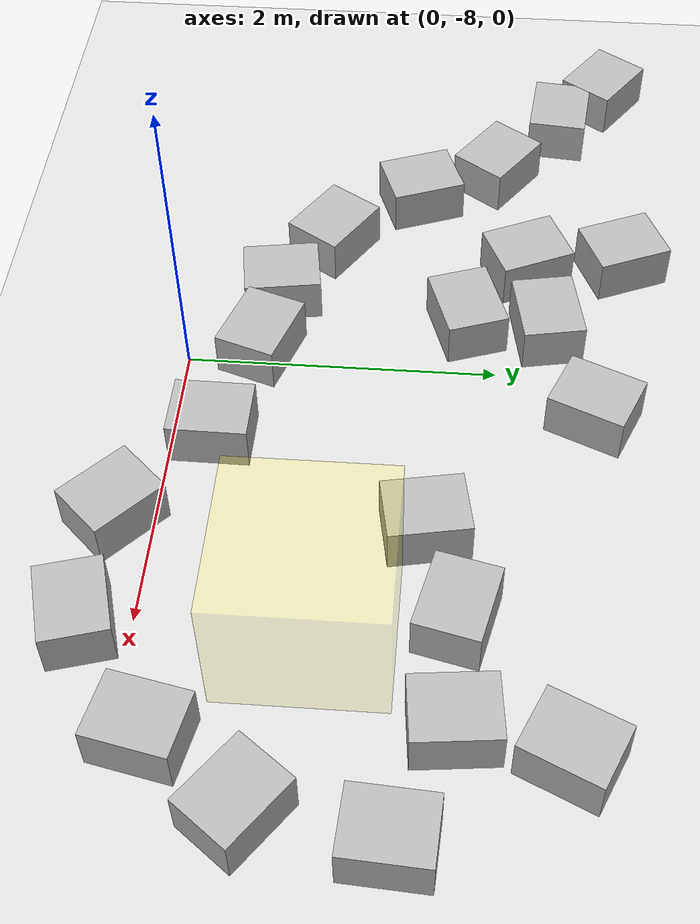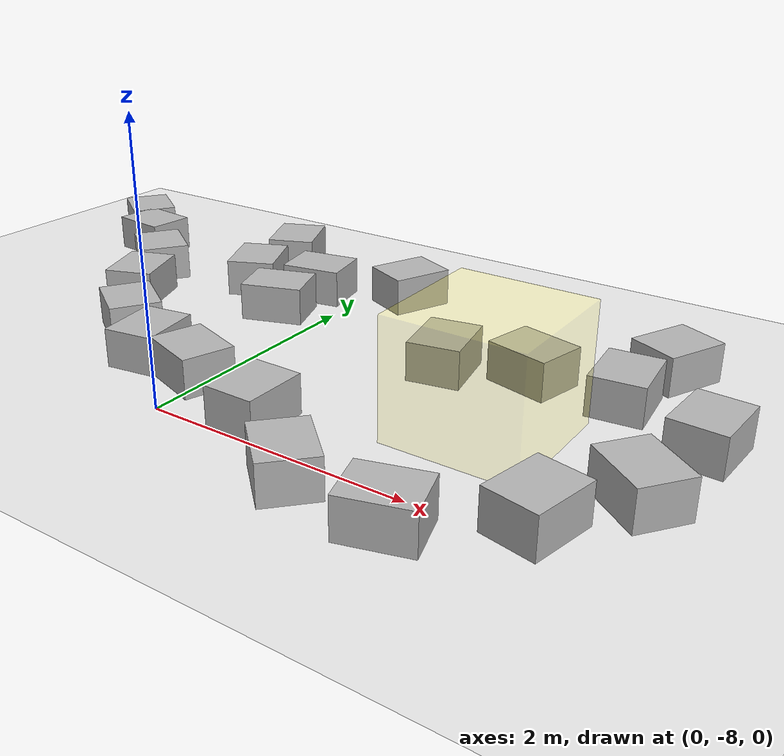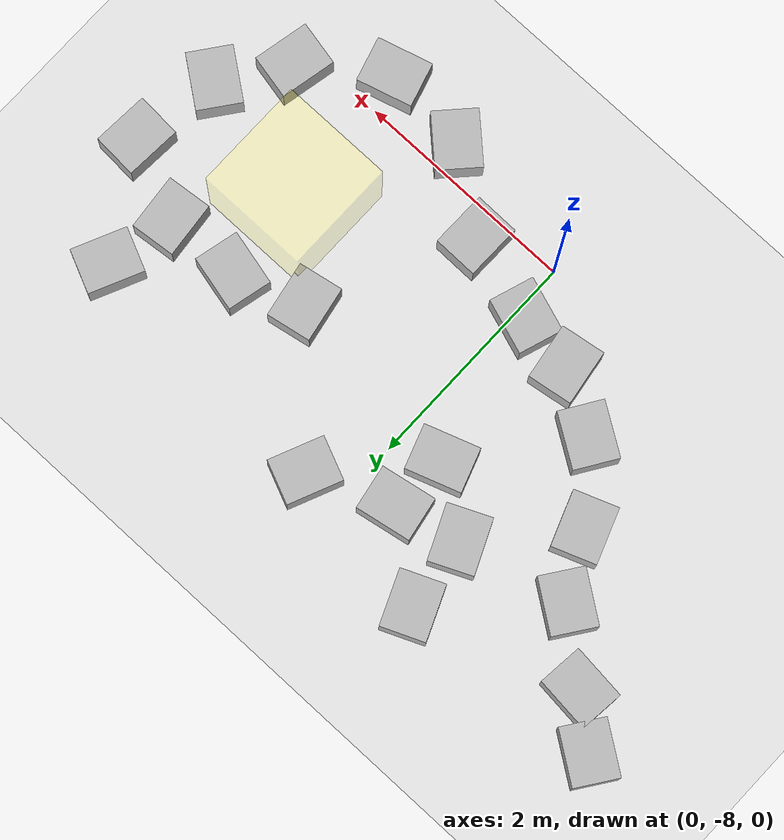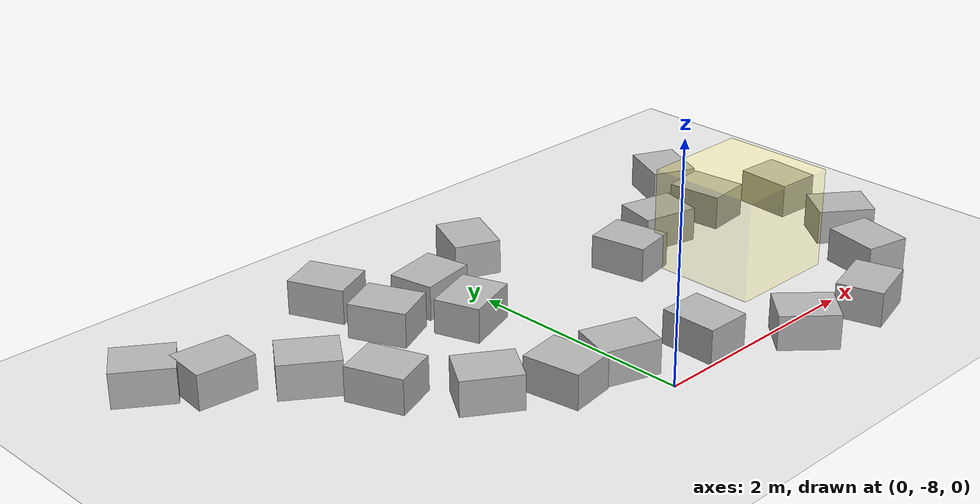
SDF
<sdf version="1.6">
 <world name="default">
  <model name="ground_plane">
   <static>1</static>
   <link name="link">
    <collision name="collision">
     <geometry><plane><normal>0 0 1</normal><size>100 100</size></plane></geometry>
     <surface><friction><ode><mu>100</mu><mu2>50</mu2></ode></friction></surface>
    </collision>
    <visual name="visual">
     <cast_shadows>0</cast_shadows>
     <geometry><plane><normal>0 0 1</normal><size>100 100</size></plane></geometry>
     <material>
      <script><uri>file://media/materials/scripts/gazebo.material</uri><name>Gazebo/Grey</name></script>
     </material>
    </visual>
   </link>
  </model>
  <model name="RegionEventBox_1">
   <static>1</static>
   <pose>1.97376 -7.01112 0 0 -0 0</pose>
   <link name="link">
    <visual name="visual">
     <transparency>0.75</transparency>
     <geometry><box><size>1 1 1.75</size></box></geometry>
     <material>
      <script><uri>file://media/materials/scripts/gazebo.material</uri><name>Gazebo/Yellow</name></script>
     </material>
    </visual>
   </link>
   <plugin name="region_event_box" filename="libRegionEventBoxPlugin.so">
    <event><name>model_in_region_event_box</name><type>inclusion</type><active>1</active></event>
   </plugin>
  </model>
  <model name="cardboard_box_clone_clone_clone_clone_0_clone_clone_clone_0_clone_11_clone_clone_2">
   <link name="link">
    <inertial>
     <mass>2</mass>
     <inertia>
      <ixx>0.0416667</ixx>
      <ixy>0</ixy>
      <ixz>0</ixz>
      <iyy>0.0566667</iyy>
      <iyz>0</iyz>
      <izz>0.0683333</izz>
     </inertia>
    </inertial>
    <visual name="visual">
     <pose>0 0 -0.15 0 -0 0</pose>
     <geometry>
      <mesh><uri>model://cardboard_box/meshes/cardboard_box.dae</uri><scale>1.25932 1.00745 0.755591</scale></mesh>
     </geometry>
    </visual>
    <collision name="collision">
     <geometry><box><size>0.5 0.4 0.3</size></box></geometry>
     <surface>
      <friction>
       <ode><mu>1</mu><mu2>1</mu2><fdir1>0 0 0</fdir1><slip1>0</slip1><slip2>0</slip2></ode>
       <torsional>
        <coefficient>1</coefficient>
        <patch_radius>0</patch_radius>
        <surface_radius>0</surface_radius>
        <use_patch_radius>1</use_patch_radius>
        <ode><slip>0</slip></ode>
       </torsional>
      </friction>
      <bounce><restitution_coefficient>0</restitution_coefficient><threshold>1e+06</threshold></bounce>
      <contact>
       <collide_without_contact>0</collide_without_contact>
       <collide_without_contact_bitmask>1</collide_without_contact_bitmask>
       <collide_bitmask>1</collide_bitmask>
       <ode>
        <soft_cfm>0</soft_cfm>
        <soft_erp>0.2</soft_erp>
        <kp>1e+07</kp>
        <kd>1</kd>
        <max_vel>0.1</max_vel>
        <min_depth>0.001</min_depth>
       </ode>
       <bullet>
        <split_impulse>1</split_impulse>
        <split_impulse_penetration_threshold>-0.01</split_impulse_penetration_threshold>
        <soft_cfm>0</soft_cfm>
        <soft_erp>0.2</soft_erp>
        <kp>1e+07</kp>
        <kd>1</kd>
       </bullet>
      </contact>
     </surface>
    </collision>
   </link>
   <static>1</static>
   <pose>2.70284 -5.55434 0.15 0 0 -2.00417</pose>
  </model>
  <model name="cardboard_box_clone_clone_clone_clone_0_clone_clone_clone_0_clone_11_clone_clone_3">
   <link name="link">
    <inertial>
     <mass>2</mass>
     <inertia>
      <ixx>0.0416667</ixx>
      <ixy>0</ixy>
      <ixz>0</ixz>
      <iyy>0.0566667</iyy>
      <iyz>0</iyz>
      <izz>0.0683333</izz>
     </inertia>
    </inertial>
    <visual name="visual">
     <pose>0 0 -0.15 0 -0 0</pose>
     <geometry>
      <mesh><uri>model://cardboard_box/meshes/cardboard_box.dae</uri><scale>1.25932 1.00745 0.755591</scale></mesh>
     </geometry>
    </visual>
    <collision name="collision">
     <geometry><box><size>0.5 0.4 0.3</size></box></geometry>
     <surface>
      <friction>
       <ode><mu>1</mu><mu2>1</mu2><fdir1>0 0 0</fdir1><slip1>0</slip1><slip2>0</slip2></ode>
       <torsional>
        <coefficient>1</coefficient>
        <patch_radius>0</patch_radius>
        <surface_radius>0</surface_radius>
        <use_patch_radius>1</use_patch_radius>
        <ode><slip>0</slip></ode>
       </torsional>
      </friction>
      <bounce><restitution_coefficient>0</restitution_coefficient><threshold>1e+06</threshold></bounce>
      <contact>
       <collide_without_contact>0</collide_without_contact>
       <collide_without_contact_bitmask>1</collide_without_contact_bitmask>
       <collide_bitmask>1</collide_bitmask>
       <ode>
        <soft_cfm>0</soft_cfm>
        <soft_erp>0.2</soft_erp>
        <kp>1e+07</kp>
        <kd>1</kd>
        <max_vel>0.1</max_vel>
        <min_depth>0.001</min_depth>
       </ode>
       <bullet>
        <split_impulse>1</split_impulse>
        <split_impulse_penetration_threshold>-0.01</split_impulse_penetration_threshold>
        <soft_cfm>0</soft_cfm>
        <soft_erp>0.2</soft_erp>
        <kp>1e+07</kp>
        <kd>1</kd>
       </bullet>
      </contact>
     </surface>
    </collision>
   </link>
   <static>1</static>
   <pose>2.57627 -6.17267 0.15 0 0 -1.46657</pose>
  </model>
  <model name="cardboard_box_clone_clone_clone_clone_0_clone_clone_clone_0_clone_11_clone_clone_4">
   <link name="link">
    <inertial>
     <mass>2</mass>
     <inertia>
      <ixx>0.0416667</ixx>
      <ixy>0</ixy>
      <ixz>0</ixz>
      <iyy>0.0566667</iyy>
      <iyz>0</iyz>
      <izz>0.0683333</izz>
     </inertia>
    </inertial>
    <visual name="visual">
     <pose>0 0 -0.15 0 -0 0</pose>
     <geometry>
      <mesh><uri>model://cardboard_box/meshes/cardboard_box.dae</uri><scale>1.25932 1.00745 0.755591</scale></mesh>
     </geometry>
    </visual>
    <collision name="collision">
     <geometry><box><size>0.5 0.4 0.3</size></box></geometry>
     <surface>
      <friction>
       <ode><mu>1</mu><mu2>1</mu2><fdir1>0 0 0</fdir1><slip1>0</slip1><slip2>0</slip2></ode>
       <torsional>
        <coefficient>1</coefficient>
        <patch_radius>0</patch_radius>
        <surface_radius>0</surface_radius>
        <use_patch_radius>1</use_patch_radius>
        <ode><slip>0</slip></ode>
       </torsional>
      </friction>
      <bounce><restitution_coefficient>0</restitution_coefficient><threshold>1e+06</threshold></bounce>
      <contact>
       <collide_without_contact>0</collide_without_contact>
       <collide_without_contact_bitmask>1</collide_without_contact_bitmask>
       <collide_bitmask>1</collide_bitmask>
       <ode>
        <soft_cfm>0</soft_cfm>
        <soft_erp>0.2</soft_erp>
        <kp>1e+07</kp>
        <kd>1</kd>
        <max_vel>0.1</max_vel>
        <min_depth>0.001</min_depth>
       </ode>
       <bullet>
        <split_impulse>1</split_impulse>
        <split_impulse_penetration_threshold>-0.01</split_impulse_penetration_threshold>
        <soft_cfm>0</soft_cfm>
        <soft_erp>0.2</soft_erp>
        <kp>1e+07</kp>
        <kd>1</kd>
       </bullet>
      </contact>
     </surface>
    </collision>
   </link>
   <static>1</static>
   <pose>3.24318 -6.47147 0.15 0 0 -1.63291</pose>
  </model>
  <model name="cardboard_box_clone_clone_clone_clone_0_clone_clone_clone_0_clone_11_clone_clone_5">
   <link name="link">
    <inertial>
     <mass>2</mass>
     <inertia>
      <ixx>0.0416667</ixx>
      <ixy>0</ixy>
      <ixz>0</ixz>
      <iyy>0.0566667</iyy>
      <iyz>0</iyz>
      <izz>0.0683333</izz>
     </inertia>
    </inertial>
    <visual name="visual">
     <pose>0 0 -0.15 0 -0 0</pose>
     <geometry>
      <mesh><uri>model://cardboard_box/meshes/cardboard_box.dae</uri><scale>1.25932 1.00745 0.755591</scale></mesh>
     </geometry>
    </visual>
    <collision name="collision">
     <geometry><box><size>0.5 0.4 0.3</size></box></geometry>
     <surface>
      <friction>
       <ode><mu>1</mu><mu2>1</mu2><fdir1>0 0 0</fdir1><slip1>0</slip1><slip2>0</slip2></ode>
       <torsional>
        <coefficient>1</coefficient>
        <patch_radius>0</patch_radius>
        <surface_radius>0</surface_radius>
        <use_patch_radius>1</use_patch_radius>
        <ode><slip>0</slip></ode>
       </torsional>
      </friction>
      <bounce><restitution_coefficient>0</restitution_coefficient><threshold>1e+06</threshold></bounce>
      <contact>
       <collide_without_contact>0</collide_without_contact>
       <collide_without_contact_bitmask>1</collide_without_contact_bitmask>
       <collide_bitmask>1</collide_bitmask>
       <ode>
        <soft_cfm>0</soft_cfm>
        <soft_erp>0.2</soft_erp>
        <kp>1e+07</kp>
        <kd>1</kd>
        <max_vel>0.1</max_vel>
        <min_depth>0.001</min_depth>
       </ode>
       <bullet>
        <split_impulse>1</split_impulse>
        <split_impulse_penetration_threshold>-0.01</split_impulse_penetration_threshold>
        <soft_cfm>0</soft_cfm>
        <soft_erp>0.2</soft_erp>
        <kp>1e+07</kp>
        <kd>1</kd>
       </bullet>
      </contact>
     </surface>
    </collision>
   </link>
   <static>1</static>
   <pose>3.11203 -7.2599 0.15 0 0 -0.644199</pose>
  </model>
  <model name="cardboard_box_clone_clone_clone_clone_0_clone_clone_clone_0_clone_11_clone_clone_6">
   <link name="link">
    <inertial>
     <mass>2</mass>
     <inertia>
      <ixx>0.0416667</ixx>
      <ixy>0</ixy>
      <ixz>0</ixz>
      <iyy>0.0566667</iyy>
      <iyz>0</iyz>
      <izz>0.0683333</izz>
     </inertia>
    </inertial>
    <visual name="visual">
     <pose>0 0 -0.15 0 -0 0</pose>
     <geometry>
      <mesh><uri>model://cardboard_box/meshes/cardboard_box.dae</uri><scale>1.25932 1.00745 0.755591</scale></mesh>
     </geometry>
    </visual>
    <collision name="collision">
     <geometry><box><size>0.5 0.4 0.3</size></box></geometry>
     <surface>
      <friction>
       <ode><mu>1</mu><mu2>1</mu2><fdir1>0 0 0</fdir1><slip1>0</slip1><slip2>0</slip2></ode>
       <torsional>
        <coefficient>1</coefficient>
        <patch_radius>0</patch_radius>
        <surface_radius>0</surface_radius>
        <use_patch_radius>1</use_patch_radius>
        <ode><slip>0</slip></ode>
       </torsional>
      </friction>
      <bounce><restitution_coefficient>0</restitution_coefficient><threshold>1e+06</threshold></bounce>
      <contact>
       <collide_without_contact>0</collide_without_contact>
       <collide_without_contact_bitmask>1</collide_without_contact_bitmask>
       <collide_bitmask>1</collide_bitmask>
       <ode>
        <soft_cfm>0</soft_cfm>
        <soft_erp>0.2</soft_erp>
        <kp>1e+07</kp>
        <kd>1</kd>
        <max_vel>0.1</max_vel>
        <min_depth>0.001</min_depth>
       </ode>
       <bullet>
        <split_impulse>1</split_impulse>
        <split_impulse_penetration_threshold>-0.01</split_impulse_penetration_threshold>
        <soft_cfm>0</soft_cfm>
        <soft_erp>0.2</soft_erp>
        <kp>1e+07</kp>
        <kd>1</kd>
       </bullet>
      </contact>
     </surface>
    </collision>
   </link>
   <static>1</static>
   <pose>2.73076 -7.81332 0.15 0 0 -1.77717</pose>
  </model>
  <model name="cardboard_box_clone_clone_clone_clone_0_clone_clone_clone_0_clone_11_clone_clone_7">
   <link name="link">
    <inertial>
     <mass>2</mass>
     <inertia>
      <ixx>0.0416667</ixx>
      <ixy>0</ixy>
      <ixz>0</ixz>
      <iyy>0.0566667</iyy>
      <iyz>0</iyz>
      <izz>0.0683333</izz>
     </inertia>
    </inertial>
    <visual name="visual">
     <pose>0 0 -0.15 0 -0 0</pose>
     <geometry>
      <mesh><uri>model://cardboard_box/meshes/cardboard_box.dae</uri><scale>1.25932 1.00745 0.755591</scale></mesh>
     </geometry>
    </visual>
    <collision name="collision">
     <geometry><box><size>0.5 0.4 0.3</size></box></geometry>
     <surface>
      <friction>
       <ode><mu>1</mu><mu2>1</mu2><fdir1>0 0 0</fdir1><slip1>0</slip1><slip2>0</slip2></ode>
       <torsional>
        <coefficient>1</coefficient>
        <patch_radius>0</patch_radius>
        <surface_radius>0</surface_radius>
        <use_patch_radius>1</use_patch_radius>
        <ode><slip>0</slip></ode>
       </torsional>
      </friction>
      <bounce><restitution_coefficient>0</restitution_coefficient><threshold>1e+06</threshold></bounce>
      <contact>
       <collide_without_contact>0</collide_without_contact>
       <collide_without_contact_bitmask>1</collide_without_contact_bitmask>
       <collide_bitmask>1</collide_bitmask>
       <ode>
        <soft_cfm>0</soft_cfm>
        <soft_erp>0.2</soft_erp>
        <kp>1e+07</kp>
        <kd>1</kd>
        <max_vel>0.1</max_vel>
        <min_depth>0.001</min_depth>
       </ode>
       <bullet>
        <split_impulse>1</split_impulse>
        <split_impulse_penetration_threshold>-0.01</split_impulse_penetration_threshold>
        <soft_cfm>0</soft_cfm>
        <soft_erp>0.2</soft_erp>
        <kp>1e+07</kp>
        <kd>1</kd>
       </bullet>
      </contact>
     </surface>
    </collision>
   </link>
   <static>1</static>
   <pose>2.06145 -8.2994 0.15 0 0 -2.86092</pose>
  </model>
  <model name="cardboard_box_clone_clone_clone_clone_0_clone_clone_clone_0_clone_11_clone_clone_8">
   <link name="link">
    <inertial>
     <mass>2</mass>
     <inertia>
      <ixx>0.0416667</ixx>
      <ixy>0</ixy>
      <ixz>0</ixz>
      <iyy>0.0566667</iyy>
      <iyz>0</iyz>
      <izz>0.0683333</izz>
     </inertia>
    </inertial>
    <visual name="visual">
     <pose>0 0 -0.15 0 -0 0</pose>
     <geometry>
      <mesh><uri>model://cardboard_box/meshes/cardboard_box.dae</uri><scale>1.25932 1.00745 0.755591</scale></mesh>
     </geometry>
    </visual>
    <collision name="collision">
     <geometry><box><size>0.5 0.4 0.3</size></box></geometry>
     <surface>
      <friction>
       <ode><mu>1</mu><mu2>1</mu2><fdir1>0 0 0</fdir1><slip1>0</slip1><slip2>0</slip2></ode>
       <torsional>
        <coefficient>1</coefficient>
        <patch_radius>0</patch_radius>
        <surface_radius>0</surface_radius>
        <use_patch_radius>1</use_patch_radius>
        <ode><slip>0</slip></ode>
       </torsional>
      </friction>
      <bounce><restitution_coefficient>0</restitution_coefficient><threshold>1e+06</threshold></bounce>
      <contact>
       <collide_without_contact>0</collide_without_contact>
       <collide_without_contact_bitmask>1</collide_without_contact_bitmask>
       <collide_bitmask>1</collide_bitmask>
       <ode>
        <soft_cfm>0</soft_cfm>
        <soft_erp>0.2</soft_erp>
        <kp>1e+07</kp>
        <kd>1</kd>
        <max_vel>0.1</max_vel>
        <min_depth>0.001</min_depth>
       </ode>
       <bullet>
        <split_impulse>1</split_impulse>
        <split_impulse_penetration_threshold>-0.01</split_impulse_penetration_threshold>
        <soft_cfm>0</soft_cfm>
        <soft_erp>0.2</soft_erp>
        <kp>1e+07</kp>
        <kd>1</kd>
       </bullet>
      </contact>
     </surface>
    </collision>
   </link>
   <static>1</static>
   <pose>1.30283 -8.22944 0.15 0 -0 2.38709</pose>
  </model>
  <model name="cardboard_box_clone_clone_clone_clone_0_clone_clone_clone_0_clone_11_clone_clone_9">
   <link name="link">
    <inertial>
     <mass>2</mass>
     <inertia>
      <ixx>0.0416667</ixx>
      <ixy>0</ixy>
      <ixz>0</ixz>
      <iyy>0.0566667</iyy>
      <iyz>0</iyz>
      <izz>0.0683333</izz>
     </inertia>
    </inertial>
    <visual name="visual">
     <pose>0 0 -0.15 0 -0 0</pose>
     <geometry>
      <mesh><uri>model://cardboard_box/meshes/cardboard_box.dae</uri><scale>1.25932 1.00745 0.755591</scale></mesh>
     </geometry>
    </visual>
    <collision name="collision">
     <geometry><box><size>0.5 0.4 0.3</size></box></geometry>
     <surface>
      <friction>
       <ode><mu>1</mu><mu2>1</mu2><fdir1>0 0 0</fdir1><slip1>0</slip1><slip2>0</slip2></ode>
       <torsional>
        <coefficient>1</coefficient>
        <patch_radius>0</patch_radius>
        <surface_radius>0</surface_radius>
        <use_patch_radius>1</use_patch_radius>
        <ode><slip>0</slip></ode>
       </torsional>
      </friction>
      <bounce><restitution_coefficient>0</restitution_coefficient><threshold>1e+06</threshold></bounce>
      <contact>
       <collide_without_contact>0</collide_without_contact>
       <collide_without_contact_bitmask>1</collide_without_contact_bitmask>
       <collide_bitmask>1</collide_bitmask>
       <ode>
        <soft_cfm>0</soft_cfm>
        <soft_erp>0.2</soft_erp>
        <kp>1e+07</kp>
        <kd>1</kd>
        <max_vel>0.1</max_vel>
        <min_depth>0.001</min_depth>
       </ode>
       <bullet>
        <split_impulse>1</split_impulse>
        <split_impulse_penetration_threshold>-0.01</split_impulse_penetration_threshold>
        <soft_cfm>0</soft_cfm>
        <soft_erp>0.2</soft_erp>
        <kp>1e+07</kp>
        <kd>1</kd>
       </bullet>
      </contact>
     </surface>
    </collision>
   </link>
   <static>1</static>
   <pose>0.644855 -7.74081 0.15 0 -0 1.55864</pose>
  </model>
  <model name="cardboard_box_clone_clone_clone_clone_0_clone_clone_clone_0_clone_11_clone_clone_10">
   <link name="link">
    <inertial>
     <mass>2</mass>
     <inertia>
      <ixx>0.0416667</ixx>
      <ixy>0</ixy>
      <ixz>0</ixz>
      <iyy>0.0566667</iyy>
      <iyz>0</iyz>
      <izz>0.0683333</izz>
     </inertia>
    </inertial>
    <visual name="visual">
     <pose>0 0 -0.15 0 -0 0</pose>
     <geometry>
      <mesh><uri>model://cardboard_box/meshes/cardboard_box.dae</uri><scale>1.25932 1.00745 0.755591</scale></mesh>
     </geometry>
    </visual>
    <collision name="collision">
     <geometry><box><size>0.5 0.4 0.3</size></box></geometry>
     <surface>
      <friction>
       <ode><mu>1</mu><mu2>1</mu2><fdir1>0 0 0</fdir1><slip1>0</slip1><slip2>0</slip2></ode>
       <torsional>
        <coefficient>1</coefficient>
        <patch_radius>0</patch_radius>
        <surface_radius>0</surface_radius>
        <use_patch_radius>1</use_patch_radius>
        <ode><slip>0</slip></ode>
       </torsional>
      </friction>
      <bounce><restitution_coefficient>0</restitution_coefficient><threshold>1e+06</threshold></bounce>
      <contact>
       <collide_without_contact>0</collide_without_contact>
       <collide_without_contact_bitmask>1</collide_without_contact_bitmask>
       <collide_bitmask>1</collide_bitmask>
       <ode>
        <soft_cfm>0</soft_cfm>
        <soft_erp>0.2</soft_erp>
        <kp>1e+07</kp>
        <kd>1</kd>
        <max_vel>0.1</max_vel>
        <min_depth>0.001</min_depth>
       </ode>
       <bullet>
        <split_impulse>1</split_impulse>
        <split_impulse_penetration_threshold>-0.01</split_impulse_penetration_threshold>
        <soft_cfm>0</soft_cfm>
        <soft_erp>0.2</soft_erp>
        <kp>1e+07</kp>
        <kd>1</kd>
       </bullet>
      </contact>
     </surface>
    </collision>
   </link>
   <static>1</static>
   <pose>-0.099092 -7.52875 0.15 0 -0 2.81578</pose>
  </model>
  <model name="cardboard_box_clone_clone_clone_clone_0_clone_clone_clone_0_clone_11_clone_clone_11">
   <link name="link">
    <inertial>
     <mass>2</mass>
     <inertia>
      <ixx>0.0416667</ixx>
      <ixy>0</ixy>
      <ixz>0</ixz>
      <iyy>0.0566667</iyy>
      <iyz>0</iyz>
      <izz>0.0683333</izz>
     </inertia>
    </inertial>
    <visual name="visual">
     <pose>0 0 -0.15 0 -0 0</pose>
     <geometry>
      <mesh><uri>model://cardboard_box/meshes/cardboard_box.dae</uri><scale>1.25932 1.00745 0.755591</scale></mesh>
     </geometry>
    </visual>
    <collision name="collision">
     <geometry><box><size>0.5 0.4 0.3</size></box></geometry>
     <surface>
      <friction>
       <ode><mu>1</mu><mu2>1</mu2><fdir1>0 0 0</fdir1><slip1>0</slip1><slip2>0</slip2></ode>
       <torsional>
        <coefficient>1</coefficient>
        <patch_radius>0</patch_radius>
        <surface_radius>0</surface_radius>
        <use_patch_radius>1</use_patch_radius>
        <ode><slip>0</slip></ode>
       </torsional>
      </friction>
      <bounce><restitution_coefficient>0</restitution_coefficient><threshold>1e+06</threshold></bounce>
      <contact>
       <collide_without_contact>0</collide_without_contact>
       <collide_without_contact_bitmask>1</collide_without_contact_bitmask>
       <collide_bitmask>1</collide_bitmask>
       <ode>
        <soft_cfm>0</soft_cfm>
        <soft_erp>0.2</soft_erp>
        <kp>1e+07</kp>
        <kd>1</kd>
        <max_vel>0.1</max_vel>
        <min_depth>0.001</min_depth>
       </ode>
       <bullet>
        <split_impulse>1</split_impulse>
        <split_impulse_penetration_threshold>-0.01</split_impulse_penetration_threshold>
        <soft_cfm>0</soft_cfm>
        <soft_erp>0.2</soft_erp>
        <kp>1e+07</kp>
        <kd>1</kd>
       </bullet>
      </contact>
     </surface>
    </collision>
   </link>
   <static>1</static>
   <pose>-0.61094 -7.45016 0.15 0 -0 1.72423</pose>
  </model>
  <model name="cardboard_box_clone_clone_clone_clone_0_clone_clone_clone_0_clone_11_clone_clone_12">
   <link name="link">
    <inertial>
     <mass>2</mass>
     <inertia>
      <ixx>0.0416667</ixx>
      <ixy>0</ixy>
      <ixz>0</ixz>
      <iyy>0.0566667</iyy>
      <iyz>0</iyz>
      <izz>0.0683333</izz>
     </inertia>
    </inertial>
    <visual name="visual">
     <pose>0 0 -0.15 0 -0 0</pose>
     <geometry>
      <mesh><uri>model://cardboard_box/meshes/cardboard_box.dae</uri><scale>1.25932 1.00745 0.755591</scale></mesh>
     </geometry>
    </visual>
    <collision name="collision">
     <geometry><box><size>0.5 0.4 0.3</size></box></geometry>
     <surface>
      <friction>
       <ode><mu>1</mu><mu2>1</mu2><fdir1>0 0 0</fdir1><slip1>0</slip1><slip2>0</slip2></ode>
       <torsional>
        <coefficient>1</coefficient>
        <patch_radius>0</patch_radius>
        <surface_radius>0</surface_radius>
        <use_patch_radius>1</use_patch_radius>
        <ode><slip>0</slip></ode>
       </torsional>
      </friction>
      <bounce><restitution_coefficient>0</restitution_coefficient><threshold>1e+06</threshold></bounce>
      <contact>
       <collide_without_contact>0</collide_without_contact>
       <collide_without_contact_bitmask>1</collide_without_contact_bitmask>
       <collide_bitmask>1</collide_bitmask>
       <ode>
        <soft_cfm>0</soft_cfm>
        <soft_erp>0.2</soft_erp>
        <kp>1e+07</kp>
        <kd>1</kd>
        <max_vel>0.1</max_vel>
        <min_depth>0.001</min_depth>
       </ode>
       <bullet>
        <split_impulse>1</split_impulse>
        <split_impulse_penetration_threshold>-0.01</split_impulse_penetration_threshold>
        <soft_cfm>0</soft_cfm>
        <soft_erp>0.2</soft_erp>
        <kp>1e+07</kp>
        <kd>1</kd>
       </bullet>
      </contact>
     </surface>
    </collision>
   </link>
   <static>1</static>
   <pose>-1.12863 -7.14709 0.15 0 -0 2.56747</pose>
  </model>
  <model name="cardboard_box_clone_clone_clone_clone_0_clone_clone_clone_0_clone_11_clone_clone_13">
   <link name="link">
    <inertial>
     <mass>2</mass>
     <inertia>
      <ixx>0.0416667</ixx>
      <ixy>0</ixy>
      <ixz>0</ixz>
      <iyy>0.0566667</iyy>
      <iyz>0</iyz>
      <izz>0.0683333</izz>
     </inertia>
    </inertial>
    <visual name="visual">
     <pose>0 0 -0.15 0 -0 0</pose>
     <geometry>
      <mesh><uri>model://cardboard_box/meshes/cardboard_box.dae</uri><scale>1.25932 1.00745 0.755591</scale></mesh>
     </geometry>
    </visual>
    <collision name="collision">
     <geometry><box><size>0.5 0.4 0.3</size></box></geometry>
     <surface>
      <friction>
       <ode><mu>1</mu><mu2>1</mu2><fdir1>0 0 0</fdir1><slip1>0</slip1><slip2>0</slip2></ode>
       <torsional>
        <coefficient>1</coefficient>
        <patch_radius>0</patch_radius>
        <surface_radius>0</surface_radius>
        <use_patch_radius>1</use_patch_radius>
        <ode><slip>0</slip></ode>
       </torsional>
      </friction>
      <bounce><restitution_coefficient>0</restitution_coefficient><threshold>1e+06</threshold></bounce>
      <contact>
       <collide_without_contact>0</collide_without_contact>
       <collide_without_contact_bitmask>1</collide_without_contact_bitmask>
       <collide_bitmask>1</collide_bitmask>
       <ode>
        <soft_cfm>0</soft_cfm>
        <soft_erp>0.2</soft_erp>
        <kp>1e+07</kp>
        <kd>1</kd>
        <max_vel>0.1</max_vel>
        <min_depth>0.001</min_depth>
       </ode>
       <bullet>
        <split_impulse>1</split_impulse>
        <split_impulse_penetration_threshold>-0.01</split_impulse_penetration_threshold>
        <soft_cfm>0</soft_cfm>
        <soft_erp>0.2</soft_erp>
        <kp>1e+07</kp>
        <kd>1</kd>
       </bullet>
      </contact>
     </surface>
    </collision>
   </link>
   <static>1</static>
   <pose>-1.61051 -6.57147 0.15 0 -0 1.92878</pose>
  </model>
  <model name="cardboard_box_clone_clone_clone_clone_0_clone_clone_clone_0_clone_11_clone_clone_14">
   <link name="link">
    <inertial>
     <mass>2</mass>
     <inertia>
      <ixx>0.0416667</ixx>
      <ixy>0</ixy>
      <ixz>0</ixz>
      <iyy>0.0566667</iyy>
      <iyz>0</iyz>
      <izz>0.0683333</izz>
     </inertia>
    </inertial>
    <visual name="visual">
     <pose>0 0 -0.15 0 -0 0</pose>
     <geometry>
      <mesh><uri>model://cardboard_box/meshes/cardboard_box.dae</uri><scale>1.25932 1.00745 0.755591</scale></mesh>
     </geometry>
    </visual>
    <collision name="collision">
     <geometry><box><size>0.5 0.4 0.3</size></box></geometry>
     <surface>
      <friction>
       <ode><mu>1</mu><mu2>1</mu2><fdir1>0 0 0</fdir1><slip1>0</slip1><slip2>0</slip2></ode>
       <torsional>
        <coefficient>1</coefficient>
        <patch_radius>0</patch_radius>
        <surface_radius>0</surface_radius>
        <use_patch_radius>1</use_patch_radius>
        <ode><slip>0</slip></ode>
       </torsional>
      </friction>
      <bounce><restitution_coefficient>0</restitution_coefficient><threshold>1e+06</threshold></bounce>
      <contact>
       <collide_without_contact>0</collide_without_contact>
       <collide_without_contact_bitmask>1</collide_without_contact_bitmask>
       <collide_bitmask>1</collide_bitmask>
       <ode>
        <soft_cfm>0</soft_cfm>
        <soft_erp>0.2</soft_erp>
        <kp>1e+07</kp>
        <kd>1</kd>
        <max_vel>0.1</max_vel>
        <min_depth>0.001</min_depth>
       </ode>
       <bullet>
        <split_impulse>1</split_impulse>
        <split_impulse_penetration_threshold>-0.01</split_impulse_penetration_threshold>
        <soft_cfm>0</soft_cfm>
        <soft_erp>0.2</soft_erp>
        <kp>1e+07</kp>
        <kd>1</kd>
       </bullet>
      </contact>
     </surface>
    </collision>
   </link>
   <static>1</static>
   <pose>-1.91416 -6.03654 0.15 0 -0 2.52691</pose>
  </model>
  <model name="cardboard_box_clone_clone_clone_clone_0_clone_clone_clone_0_clone_11_clone_clone_15">
   <link name="link">
    <inertial>
     <mass>2</mass>
     <inertia>
      <ixx>0.0416667</ixx>
      <ixy>0</ixy>
      <ixz>0</ixz>
      <iyy>0.0566667</iyy>
      <iyz>0</iyz>
      <izz>0.0683333</izz>
     </inertia>
    </inertial>
    <visual name="visual">
     <pose>0 0 -0.15 0 -0 0</pose>
     <geometry>
      <mesh><uri>model://cardboard_box/meshes/cardboard_box.dae</uri><scale>1.25932 1.00745 0.755591</scale></mesh>
     </geometry>
    </visual>
    <collision name="collision">
     <geometry><box><size>0.5 0.4 0.3</size></box></geometry>
     <surface>
      <friction>
       <ode><mu>1</mu><mu2>1</mu2><fdir1>0 0 0</fdir1><slip1>0</slip1><slip2>0</slip2></ode>
       <torsional>
        <coefficient>1</coefficient>
        <patch_radius>0</patch_radius>
        <surface_radius>0</surface_radius>
        <use_patch_radius>1</use_patch_radius>
        <ode><slip>0</slip></ode>
       </torsional>
      </friction>
      <bounce><restitution_coefficient>0</restitution_coefficient><threshold>1e+06</threshold></bounce>
      <contact>
       <collide_without_contact>0</collide_without_contact>
       <collide_without_contact_bitmask>1</collide_without_contact_bitmask>
       <collide_bitmask>1</collide_bitmask>
       <ode>
        <soft_cfm>0</soft_cfm>
        <soft_erp>0.2</soft_erp>
        <kp>1e+07</kp>
        <kd>1</kd>
        <max_vel>0.1</max_vel>
        <min_depth>0.001</min_depth>
       </ode>
       <bullet>
        <split_impulse>1</split_impulse>
        <split_impulse_penetration_threshold>-0.01</split_impulse_penetration_threshold>
        <soft_cfm>0</soft_cfm>
        <soft_erp>0.2</soft_erp>
        <kp>1e+07</kp>
        <kd>1</kd>
       </bullet>
      </contact>
     </surface>
    </collision>
   </link>
   <static>1</static>
   <pose>-2.45403 -5.58845 0.15 0 -0 3.03961</pose>
  </model>
  <model name="cardboard_box_clone_clone_clone_clone_0_clone_clone_clone_0_clone_11_clone_clone_16">
   <link name="link">
    <inertial>
     <mass>2</mass>
     <inertia>
      <ixx>0.0416667</ixx>
      <ixy>0</ixy>
      <ixz>0</ixz>
      <iyy>0.0566667</iyy>
      <iyz>0</iyz>
      <izz>0.0683333</izz>
     </inertia>
    </inertial>
    <visual name="visual">
     <pose>0 0 -0.15 0 -0 0</pose>
     <geometry>
      <mesh><uri>model://cardboard_box/meshes/cardboard_box.dae</uri><scale>1.25932 1.00745 0.755591</scale></mesh>
     </geometry>
    </visual>
    <collision name="collision">
     <geometry><box><size>0.5 0.4 0.3</size></box></geometry>
     <surface>
      <friction>
       <ode><mu>1</mu><mu2>1</mu2><fdir1>0 0 0</fdir1><slip1>0</slip1><slip2>0</slip2></ode>
       <torsional>
        <coefficient>1</coefficient>
        <patch_radius>0</patch_radius>
        <surface_radius>0</surface_radius>
        <use_patch_radius>1</use_patch_radius>
        <ode><slip>0</slip></ode>
       </torsional>
      </friction>
      <bounce><restitution_coefficient>0</restitution_coefficient><threshold>1e+06</threshold></bounce>
      <contact>
       <collide_without_contact>0</collide_without_contact>
       <collide_without_contact_bitmask>1</collide_without_contact_bitmask>
       <collide_bitmask>1</collide_bitmask>
       <ode>
        <soft_cfm>0</soft_cfm>
        <soft_erp>0.2</soft_erp>
        <kp>1e+07</kp>
        <kd>1</kd>
        <max_vel>0.1</max_vel>
        <min_depth>0.001</min_depth>
       </ode>
       <bullet>
        <split_impulse>1</split_impulse>
        <split_impulse_penetration_threshold>-0.01</split_impulse_penetration_threshold>
        <soft_cfm>0</soft_cfm>
        <soft_erp>0.2</soft_erp>
        <kp>1e+07</kp>
        <kd>1</kd>
       </bullet>
      </contact>
     </surface>
    </collision>
   </link>
   <static>1</static>
   <pose>-2.8483 -5.25892 0.15 0 -0 2.53333</pose>
  </model>
  <model name="cardboard_box_clone_clone_clone_clone_0_clone_clone_clone_0_clone_11_clone_clone_39">
   <link name="link">
    <inertial>
     <mass>2</mass>
     <inertia>
      <ixx>0.0416667</ixx>
      <ixy>0</ixy>
      <ixz>0</ixz>
      <iyy>0.0566667</iyy>
      <iyz>0</iyz>
      <izz>0.0683333</izz>
     </inertia>
    </inertial>
    <visual name="visual">
     <pose>0 0 -0.15 0 -0 0</pose>
     <geometry>
      <mesh><uri>model://cardboard_box/meshes/cardboard_box.dae</uri><scale>1.25932 1.00745 0.755591</scale></mesh>
     </geometry>
    </visual>
    <collision name="collision">
     <geometry><box><size>0.5 0.4 0.3</size></box></geometry>
     <surface>
      <friction>
       <ode><mu>1</mu><mu2>1</mu2><fdir1>0 0 0</fdir1><slip1>0</slip1><slip2>0</slip2></ode>
       <torsional>
        <coefficient>1</coefficient>
        <patch_radius>0</patch_radius>
        <surface_radius>0</surface_radius>
        <use_patch_radius>1</use_patch_radius>
        <ode><slip>0</slip></ode>
       </torsional>
      </friction>
      <bounce><restitution_coefficient>0</restitution_coefficient><threshold>1e+06</threshold></bounce>
      <contact>
       <collide_without_contact>0</collide_without_contact>
       <collide_without_contact_bitmask>1</collide_without_contact_bitmask>
       <collide_bitmask>1</collide_bitmask>
       <ode>
        <soft_cfm>0</soft_cfm>
        <soft_erp>0.2</soft_erp>
        <kp>1e+07</kp>
        <kd>1</kd>
        <max_vel>0.1</max_vel>
        <min_depth>0.001</min_depth>
       </ode>
       <bullet>
        <split_impulse>1</split_impulse>
        <split_impulse_penetration_threshold>-0.01</split_impulse_penetration_threshold>
        <soft_cfm>0</soft_cfm>
        <soft_erp>0.2</soft_erp>
        <kp>1e+07</kp>
        <kd>1</kd>
       </bullet>
      </contact>
     </surface>
    </collision>
   </link>
   <static>1</static>
   <pose>-1.02305 -5.1697 0.15 0 0 -1.16724</pose>
  </model>
  <model name="cardboard_box_clone_clone_clone_clone_0_clone_clone_clone_0_clone_11_clone_clone_40">
   <link name="link">
    <inertial>
     <mass>2</mass>
     <inertia>
      <ixx>0.0416667</ixx>
      <ixy>0</ixy>
      <ixz>0</ixz>
      <iyy>0.0566667</iyy>
      <iyz>0</iyz>
      <izz>0.0683333</izz>
     </inertia>
    </inertial>
    <visual name="visual">
     <pose>0 0 -0.15 0 -0 0</pose>
     <geometry>
      <mesh><uri>model://cardboard_box/meshes/cardboard_box.dae</uri><scale>1.25932 1.00745 0.755591</scale></mesh>
     </geometry>
    </visual>
    <collision name="collision">
     <geometry><box><size>0.5 0.4 0.3</size></box></geometry>
     <surface>
      <friction>
       <ode><mu>1</mu><mu2>1</mu2><fdir1>0 0 0</fdir1><slip1>0</slip1><slip2>0</slip2></ode>
       <torsional>
        <coefficient>1</coefficient>
        <patch_radius>0</patch_radius>
        <surface_radius>0</surface_radius>
        <use_patch_radius>1</use_patch_radius>
        <ode><slip>0</slip></ode>
       </torsional>
      </friction>
      <bounce><restitution_coefficient>0</restitution_coefficient><threshold>1e+06</threshold></bounce>
      <contact>
       <collide_without_contact>0</collide_without_contact>
       <collide_without_contact_bitmask>1</collide_without_contact_bitmask>
       <collide_bitmask>1</collide_bitmask>
       <ode>
        <soft_cfm>0</soft_cfm>
        <soft_erp>0.2</soft_erp>
        <kp>1e+07</kp>
        <kd>1</kd>
        <max_vel>0.1</max_vel>
        <min_depth>0.001</min_depth>
       </ode>
       <bullet>
        <split_impulse>1</split_impulse>
        <split_impulse_penetration_threshold>-0.01</split_impulse_penetration_threshold>
        <soft_cfm>0</soft_cfm>
        <soft_erp>0.2</soft_erp>
        <kp>1e+07</kp>
        <kd>1</kd>
       </bullet>
      </contact>
     </surface>
    </collision>
   </link>
   <static>1</static>
   <pose>-0.365898 -5.6815 0.15 0 -0 0.181742</pose>
  </model>
  <model name="cardboard_box_clone_clone_clone_clone_0_clone_clone_clone_0_clone_11_clone_clone_41">
   <link name="link">
    <inertial>
     <mass>2</mass>
     <inertia>
      <ixx>0.0416667</ixx>
      <ixy>0</ixy>
      <ixz>0</ixz>
      <iyy>0.0566667</iyy>
      <iyz>0</iyz>
      <izz>0.0683333</izz>
     </inertia>
    </inertial>
    <visual name="visual">
     <pose>0 0 -0.15 0 -0 0</pose>
     <geometry>
      <mesh><uri>model://cardboard_box/meshes/cardboard_box.dae</uri><scale>1.25932 1.00745 0.755591</scale></mesh>
     </geometry>
    </visual>
    <collision name="collision">
     <geometry><box><size>0.5 0.4 0.3</size></box></geometry>
     <surface>
      <friction>
       <ode><mu>1</mu><mu2>1</mu2><fdir1>0 0 0</fdir1><slip1>0</slip1><slip2>0</slip2></ode>
       <torsional>
        <coefficient>1</coefficient>
        <patch_radius>0</patch_radius>
        <surface_radius>0</surface_radius>
        <use_patch_radius>1</use_patch_radius>
        <ode><slip>0</slip></ode>
       </torsional>
      </friction>
      <bounce><restitution_coefficient>0</restitution_coefficient><threshold>1e+06</threshold></bounce>
      <contact>
       <collide_without_contact>0</collide_without_contact>
       <collide_without_contact_bitmask>1</collide_without_contact_bitmask>
       <collide_bitmask>1</collide_bitmask>
       <ode>
        <soft_cfm>0</soft_cfm>
        <soft_erp>0.2</soft_erp>
        <kp>1e+07</kp>
        <kd>1</kd>
        <max_vel>0.1</max_vel>
        <min_depth>0.001</min_depth>
       </ode>
       <bullet>
        <split_impulse>1</split_impulse>
        <split_impulse_penetration_threshold>-0.01</split_impulse_penetration_threshold>
        <soft_cfm>0</soft_cfm>
        <soft_erp>0.2</soft_erp>
        <kp>1e+07</kp>
        <kd>1</kd>
       </bullet>
      </contact>
     </surface>
    </collision>
   </link>
   <static>1</static>
   <pose>0.349661 -5.38418 0.15 0 -0 1.16045</pose>
  </model>
  <model name="cardboard_box_clone_clone_clone_clone_0_clone_clone_clone_0_clone_11_clone_clone_44">
   <link name="link">
    <inertial>
     <mass>2</mass>
     <inertia>
      <ixx>0.0416667</ixx>
      <ixy>0</ixy>
      <ixz>0</ixz>
      <iyy>0.0566667</iyy>
      <iyz>0</iyz>
      <izz>0.0683333</izz>
     </inertia>
    </inertial>
    <visual name="visual">
     <pose>0 0 -0.15 0 -0 0</pose>
     <geometry>
      <mesh><uri>model://cardboard_box/meshes/cardboard_box.dae</uri><scale>1.25932 1.00745 0.755591</scale></mesh>
     </geometry>
    </visual>
    <collision name="collision">
     <geometry><box><size>0.5 0.4 0.3</size></box></geometry>
     <surface>
      <friction>
       <ode><mu>1</mu><mu2>1</mu2><fdir1>0 0 0</fdir1><slip1>0</slip1><slip2>0</slip2></ode>
       <torsional>
        <coefficient>1</coefficient>
        <patch_radius>0</patch_radius>
        <surface_radius>0</surface_radius>
        <use_patch_radius>1</use_patch_radius>
        <ode><slip>0</slip></ode>
       </torsional>
      </friction>
      <bounce><restitution_coefficient>0</restitution_coefficient><threshold>1e+06</threshold></bounce>
      <contact>
       <collide_without_contact>0</collide_without_contact>
       <collide_without_contact_bitmask>1</collide_without_contact_bitmask>
       <collide_bitmask>1</collide_bitmask>
       <ode>
        <soft_cfm>0</soft_cfm>
        <soft_erp>0.2</soft_erp>
        <kp>1e+07</kp>
        <kd>1</kd>
        <max_vel>0.1</max_vel>
        <min_depth>0.001</min_depth>
       </ode>
       <bullet>
        <split_impulse>1</split_impulse>
        <split_impulse_penetration_threshold>-0.01</split_impulse_penetration_threshold>
        <soft_cfm>0</soft_cfm>
        <soft_erp>0.2</soft_erp>
        <kp>1e+07</kp>
        <kd>1</kd>
       </bullet>
      </contact>
     </surface>
    </collision>
   </link>
   <static>1</static>
   <pose>1.29334 -6.38963 0.15 0 -0 1.75611</pose>
  </model>
  <model name="cardboard_box_clone_clone_clone_clone_0_clone_clone_clone_0_clone_11_clone_clone_43">
   <link name="link">
    <inertial>
     <mass>2</mass>
     <inertia>
      <ixx>0.0416667</ixx>
      <ixy>0</ixy>
      <ixz>0</ixz>
      <iyy>0.0566667</iyy>
      <iyz>0</iyz>
      <izz>0.0683333</izz>
     </inertia>
    </inertial>
    <visual name="visual">
     <pose>0 0 -0.15 0 -0 0</pose>
     <geometry>
      <mesh><uri>model://cardboard_box/meshes/cardboard_box.dae</uri><scale>1.25932 1.00745 0.755591</scale></mesh>
     </geometry>
    </visual>
    <collision name="collision">
     <geometry><box><size>0.5 0.4 0.3</size></box></geometry>
     <surface>
      <friction>
       <ode><mu>1</mu><mu2>1</mu2><fdir1>0 0 0</fdir1><slip1>0</slip1><slip2>0</slip2></ode>
       <torsional>
        <coefficient>1</coefficient>
        <patch_radius>0</patch_radius>
        <surface_radius>0</surface_radius>
        <use_patch_radius>1</use_patch_radius>
        <ode><slip>0</slip></ode>
       </torsional>
      </friction>
      <bounce><restitution_coefficient>0</restitution_coefficient><threshold>1e+06</threshold></bounce>
      <contact>
       <collide_without_contact>0</collide_without_contact>
       <collide_without_contact_bitmask>1</collide_without_contact_bitmask>
       <collide_bitmask>1</collide_bitmask>
       <ode>
        <soft_cfm>0</soft_cfm>
        <soft_erp>0.2</soft_erp>
        <kp>1e+07</kp>
        <kd>1</kd>
        <max_vel>0.1</max_vel>
        <min_depth>0.001</min_depth>
       </ode>
       <bullet>
        <split_impulse>1</split_impulse>
        <split_impulse_penetration_threshold>-0.01</split_impulse_penetration_threshold>
        <soft_cfm>0</soft_cfm>
        <soft_erp>0.2</soft_erp>
        <kp>1e+07</kp>
        <kd>1</kd>
       </bullet>
      </contact>
     </surface>
    </collision>
   </link>
   <static>1</static>
   <pose>1.89749 -6.18391 0.15 0 -0 2.90703</pose>
  </model>
  <model name="cardboard_box_clone_clone_clone_clone_0_clone_clone_clone_0_clone_11_clone_clone_45">
   <link name="link">
    <inertial>
     <mass>2</mass>
     <inertia>
      <ixx>0.0416667</ixx>
      <ixy>0</ixy>
      <ixz>0</ixz>
      <iyy>0.0566667</iyy>
      <iyz>0</iyz>
      <izz>0.0683333</izz>
     </inertia>
    </inertial>
    <visual name="visual">
     <pose>0 0 -0.15 0 -0 0</pose>
     <geometry>
      <mesh><uri>model://cardboard_box/meshes/cardboard_box.dae</uri><scale>1.25932 1.00745 0.755591</scale></mesh>
     </geometry>
    </visual>
    <collision name="collision">
     <geometry><box><size>0.5 0.4 0.3</size></box></geometry>
     <surface>
      <friction>
       <ode><mu>1</mu><mu2>1</mu2><fdir1>0 0 0</fdir1><slip1>0</slip1><slip2>0</slip2></ode>
       <torsional>
        <coefficient>1</coefficient>
        <patch_radius>0</patch_radius>
        <surface_radius>0</surface_radius>
        <use_patch_radius>1</use_patch_radius>
        <ode><slip>0</slip></ode>
       </torsional>
      </friction>
      <bounce><restitution_coefficient>0</restitution_coefficient><threshold>1e+06</threshold></bounce>
      <contact>
       <collide_without_contact>0</collide_without_contact>
       <collide_without_contact_bitmask>1</collide_without_contact_bitmask>
       <collide_bitmask>1</collide_bitmask>
       <ode>
        <soft_cfm>0</soft_cfm>
        <soft_erp>0.2</soft_erp>
        <kp>1e+07</kp>
        <kd>1</kd>
        <max_vel>0.1</max_vel>
        <min_depth>0.001</min_depth>
       </ode>
       <bullet>
        <split_impulse>1</split_impulse>
        <split_impulse_penetration_threshold>-0.01</split_impulse_penetration_threshold>
        <soft_cfm>0</soft_cfm>
        <soft_erp>0.2</soft_erp>
        <kp>1e+07</kp>
        <kd>1</kd>
       </bullet>
      </contact>
     </surface>
    </collision>
   </link>
   <static>1</static>
   <pose>-0.395721 -6.20585 0.15 0 0 -2.80996</pose>
  </model>
  <model name="cardboard_box_clone_clone_clone_clone_0_clone_clone_clone_0_clone_11_clone_clone_42_clone">
   <link name="link">
    <inertial>
     <mass>2</mass>
     <inertia>
      <ixx>0.0416667</ixx>
      <ixy>0</ixy>
      <ixz>0</ixz>
      <iyy>0.0566667</iyy>
      <iyz>0</iyz>
      <izz>0.0683333</izz>
     </inertia>
    </inertial>
    <visual name="visual">
     <pose>0 0 -0.15 0 -0 0</pose>
     <geometry>
      <mesh><uri>model://cardboard_box/meshes/cardboard_box.dae</uri><scale>1.25932 1.00745 0.755591</scale></mesh>
     </geometry>
    </visual>
    <collision name="collision">
     <geometry><box><size>0.5 0.4 0.3</size></box></geometry>
     <surface>
      <friction>
       <ode><mu>1</mu><mu2>1</mu2><fdir1>0 0 0</fdir1><slip1>0</slip1><slip2>0</slip2></ode>
       <torsional>
        <coefficient>1</coefficient>
        <patch_radius>0</patch_radius>
        <surface_radius>0</surface_radius>
        <use_patch_radius>1</use_patch_radius>
        <ode><slip>0</slip></ode>
       </torsional>
      </friction>
      <bounce><restitution_coefficient>0</restitution_coefficient><threshold>1e+06</threshold></bounce>
      <contact>
       <collide_without_contact>0</collide_without_contact>
       <collide_without_contact_bitmask>1</collide_without_contact_bitmask>
       <collide_bitmask>1</collide_bitmask>
       <ode>
        <soft_cfm>0</soft_cfm>
        <soft_erp>0.2</soft_erp>
        <kp>1e+07</kp>
        <kd>1</kd>
        <max_vel>0.1</max_vel>
        <min_depth>0.001</min_depth>
       </ode>
       <bullet>
        <split_impulse>1</split_impulse>
        <split_impulse_penetration_threshold>-0.01</split_impulse_penetration_threshold>
        <soft_cfm>0</soft_cfm>
        <soft_erp>0.2</soft_erp>
        <kp>1e+07</kp>
        <kd>1</kd>
       </bullet>
      </contact>
     </surface>
    </collision>
   </link>
   <static>1</static>
   <pose>-0.943816 -5.81835 0.15 0 -0 1.99331</pose>
  </model>
 </world>
</sdf>
